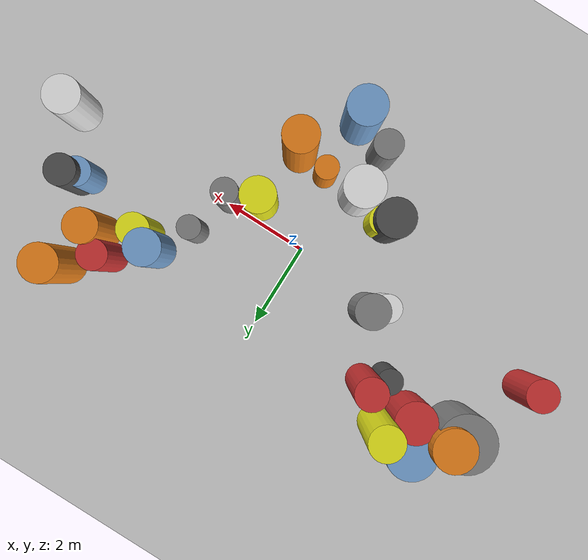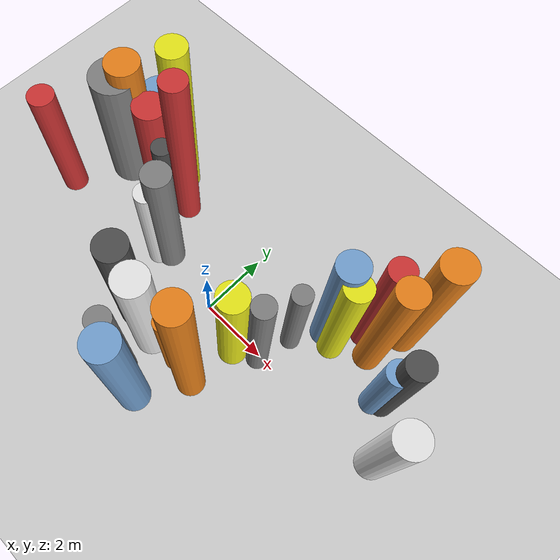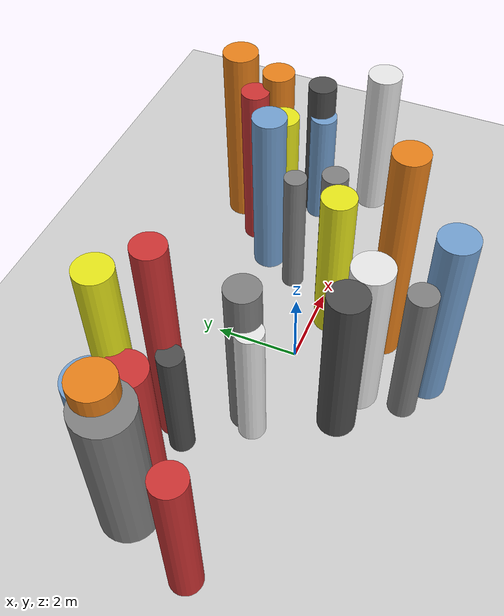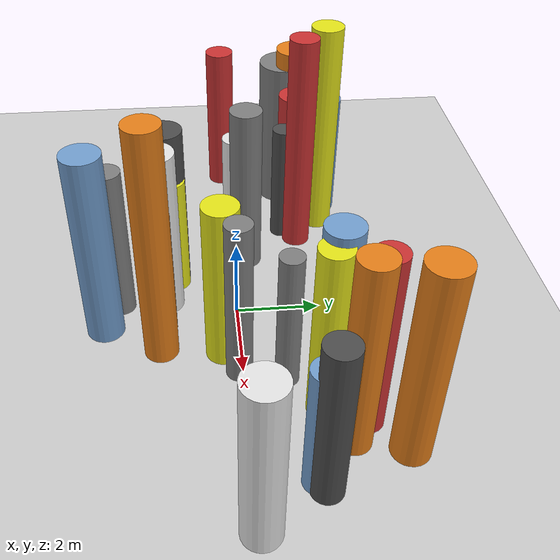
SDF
<?xml version='1.0'?>
<sdf version='1.6'>
  <world name='routeA_rl_v1__dense_recovery__rl_val__s_turn_multi_obstacle__000108'>
    <!-- Sun light -->
    <light name='sun' type='directional'>
      <cast_shadows>1</cast_shadows>
      <pose>0 0 10 0 0 0</pose>
      <diffuse>0.8 0.8 0.8 1</diffuse>
      <specular>0.2 0.2 0.2 1</specular>
      <attenuation>
        <range>1000</range>
        <constant>0.9</constant>
        <linear>0.01</linear>
        <quadratic>0.001</quadratic>
      </attenuation>
      <direction>-0.5 0.1 -0.9</direction>
    </light>

    <!-- Ground plane -->
    <model name='ground_plane'>
      <static>1</static>
      <link name='link'>
        <collision name='collision'>
          <geometry>
            <plane>
              <normal>0 0 1</normal>
              <size>100 100</size>
            </plane>
          </geometry>
          <surface>
            <contact>
              <collide_bitmask>65535</collide_bitmask>
              <ode/>
            </contact>
            <friction>
              <ode>
                <mu>100</mu>
                <mu2>50</mu2>
              </ode>
              <torsional><ode/></torsional>
            </friction>
            <bounce/>
          </surface>
          <max_contacts>10</max_contacts>
        </collision>
        <visual name='visual'>
          <cast_shadows>0</cast_shadows>
          <geometry>
            <plane>
              <normal>0 0 1</normal>
              <size>100 100</size>
            </plane>
          </geometry>
          <material>
            <script>
              <uri>file://media/materials/scripts/gazebo.material</uri>
              <n>Gazebo/Grey</n>
            </script>
          </material>
        </visual>
      </link>
    </model>

    <!-- Environment -->
    <magnetic_field>6e-06 2.3e-05 -4.2e-05</magnetic_field>
    <atmosphere type='adiabatic'/>
    <physics name='default_physics' default='0' type='ode'>
      <gravity>0 0 -9.8</gravity>
      <max_step_size>0.004</max_step_size>
      <real_time_factor>1</real_time_factor>
      <real_time_update_rate>250</real_time_update_rate>
    </physics>
    <scene>
      <ambient>0.4 0.4 0.4 1</ambient>
      <background>0.7 0.7 0.7 1</background>
      <shadows>1</shadows>
    </scene>
    <wind/>
    <spherical_coordinates>
      <surface_model>EARTH_WGS84</surface_model>
      <latitude_deg>0</latitude_deg>
      <longitude_deg>0</longitude_deg>
      <elevation>0</elevation>
      <heading_deg>0</heading_deg>
    </spherical_coordinates>

    <!-- ============ OBSTACLES (28) ============ -->
    <model name='s_turn_obs_0'>
      <static>1</static>
      <link name='link'>
        <visual name='visual'>
          <geometry>
            <cylinder>
              <radius>0.3680</radius>
              <length>4.0825</length>
            </cylinder>
          </geometry>
          <material>
            <script>
              <n>Gazebo/Red</n>
              <uri>file://media/materials/scripts/gazebo.material</uri>
            </script>
            <ambient>0.8 0.2 0.2 1</ambient>
          </material>
        </visual>
        <collision name='collision'>
          <geometry>
            <cylinder>
              <radius>0.3680</radius>
              <length>4.0825</length>
            </cylinder>
          </geometry>
          <max_contacts>10</max_contacts>
          <surface>
            <contact><ode/></contact>
            <bounce/>
            <friction>
              <ode><mu>1</mu><mu2>1</mu2></ode>
              <torsional><ode/></torsional>
            </friction>
          </surface>
        </collision>
      </link>
      <pose>-6.0000 -0.0348 2.0413 0 0 0.0000</pose>
    </model>

    <model name='s_turn_obs_1'>
      <static>1</static>
      <link name='link'>
        <visual name='visual'>
          <geometry>
            <cylinder>
              <radius>0.6534</radius>
              <length>4.1006</length>
            </cylinder>
          </geometry>
          <material>
            <script>
              <n>Gazebo/Grey</n>
              <uri>file://media/materials/scripts/gazebo.material</uri>
            </script>
            <ambient>0.5 0.5 0.5 1</ambient>
          </material>
        </visual>
        <collision name='collision'>
          <geometry>
            <cylinder>
              <radius>0.6534</radius>
              <length>4.1006</length>
            </cylinder>
          </geometry>
          <max_contacts>10</max_contacts>
          <surface>
            <contact><ode/></contact>
            <bounce/>
            <friction>
              <ode><mu>1</mu><mu2>1</mu2></ode>
              <torsional><ode/></torsional>
            </friction>
          </surface>
        </collision>
      </link>
      <pose>-5.2000 1.6719 2.0503 0 0 0.0000</pose>
    </model>

    <model name='s_turn_obs_2'>
      <static>1</static>
      <link name='link'>
        <visual name='visual'>
          <geometry>
            <cylinder>
              <radius>0.5814</radius>
              <length>3.4060</length>
            </cylinder>
          </geometry>
          <material>
            <script>
              <n>Gazebo/Blue</n>
              <uri>file://media/materials/scripts/gazebo.material</uri>
            </script>
            <ambient>0.447 0.624 0.812 1</ambient>
          </material>
        </visual>
        <collision name='collision'>
          <geometry>
            <cylinder>
              <radius>0.5814</radius>
              <length>3.4060</length>
            </cylinder>
          </geometry>
          <max_contacts>10</max_contacts>
          <surface>
            <contact><ode/></contact>
            <bounce/>
            <friction>
              <ode><mu>1</mu><mu2>1</mu2></ode>
              <torsional><ode/></torsional>
            </friction>
          </surface>
        </collision>
      </link>
      <pose>-4.4000 2.5244 1.7030 0 0 0.0000</pose>
    </model>

    <model name='s_turn_obs_3'>
      <static>1</static>
      <link name='link'>
        <visual name='visual'>
          <geometry>
            <cylinder>
              <radius>0.3984</radius>
              <length>5.7251</length>
            </cylinder>
          </geometry>
          <material>
            <script>
              <n>Gazebo/Yellow</n>
              <uri>file://media/materials/scripts/gazebo.material</uri>
            </script>
            <ambient>0.9 0.9 0.1 1</ambient>
          </material>
        </visual>
        <collision name='collision'>
          <geometry>
            <cylinder>
              <radius>0.3984</radius>
              <length>5.7251</length>
            </cylinder>
          </geometry>
          <max_contacts>10</max_contacts>
          <surface>
            <contact><ode/></contact>
            <bounce/>
            <friction>
              <ode><mu>1</mu><mu2>1</mu2></ode>
              <torsional><ode/></torsional>
            </friction>
          </surface>
        </collision>
      </link>
      <pose>-3.6000 2.4921 2.8625 0 0 0.0000</pose>
    </model>

    <model name='s_turn_obs_4'>
      <static>1</static>
      <link name='link'>
        <visual name='visual'>
          <geometry>
            <cylinder>
              <radius>0.3606</radius>
              <length>5.7950</length>
            </cylinder>
          </geometry>
          <material>
            <script>
              <n>Gazebo/Red</n>
              <uri>file://media/materials/scripts/gazebo.material</uri>
            </script>
            <ambient>0.8 0.2 0.2 1</ambient>
          </material>
        </visual>
        <collision name='collision'>
          <geometry>
            <cylinder>
              <radius>0.3606</radius>
              <length>5.7950</length>
            </cylinder>
          </geometry>
          <max_contacts>10</max_contacts>
          <surface>
            <contact><ode/></contact>
            <bounce/>
            <friction>
              <ode><mu>1</mu><mu2>1</mu2></ode>
              <torsional><ode/></torsional>
            </friction>
          </surface>
        </collision>
      </link>
      <pose>-2.8000 1.8146 2.8975 0 0 0.0000</pose>
    </model>

    <model name='s_turn_obs_5'>
      <static>1</static>
      <link name='link'>
        <visual name='visual'>
          <geometry>
            <cylinder>
              <radius>0.3925</radius>
              <length>4.4250</length>
            </cylinder>
          </geometry>
          <material>
            <script>
              <n>Gazebo/Grey</n>
              <uri>file://media/materials/scripts/gazebo.material</uri>
            </script>
            <ambient>0.5 0.5 0.5 1</ambient>
          </material>
        </visual>
        <collision name='collision'>
          <geometry>
            <cylinder>
              <radius>0.3925</radius>
              <length>4.4250</length>
            </cylinder>
          </geometry>
          <max_contacts>10</max_contacts>
          <surface>
            <contact><ode/></contact>
            <bounce/>
            <friction>
              <ode><mu>1</mu><mu2>1</mu2></ode>
              <torsional><ode/></torsional>
            </friction>
          </surface>
        </collision>
      </link>
      <pose>-2.0000 0.3825 2.2125 0 0 0.0000</pose>
    </model>

    <model name='s_turn_obs_6'>
      <static>1</static>
      <link name='link'>
        <visual name='visual'>
          <geometry>
            <cylinder>
              <radius>0.3345</radius>
              <length>3.1066</length>
            </cylinder>
          </geometry>
          <material>
            <script>
              <n>Gazebo/Yellow</n>
              <uri>file://media/materials/scripts/gazebo.material</uri>
            </script>
            <ambient>0.9 0.9 0.1 1</ambient>
          </material>
        </visual>
        <collision name='collision'>
          <geometry>
            <cylinder>
              <radius>0.3345</radius>
              <length>3.1066</length>
            </cylinder>
          </geometry>
          <max_contacts>10</max_contacts>
          <surface>
            <contact><ode/></contact>
            <bounce/>
            <friction>
              <ode><mu>1</mu><mu2>1</mu2></ode>
              <torsional><ode/></torsional>
            </friction>
          </surface>
        </collision>
      </link>
      <pose>-1.2000 -1.4455 1.5533 0 0 0.0000</pose>
    </model>

    <model name='s_turn_obs_7'>
      <static>1</static>
      <link name='link'>
        <visual name='visual'>
          <geometry>
            <cylinder>
              <radius>0.3314</radius>
              <length>3.9363</length>
            </cylinder>
          </geometry>
          <material>
            <script>
              <n>Gazebo/Grey</n>
              <uri>file://media/materials/scripts/gazebo.material</uri>
            </script>
            <ambient>0.5 0.5 0.5 1</ambient>
          </material>
        </visual>
        <collision name='collision'>
          <geometry>
            <cylinder>
              <radius>0.3314</radius>
              <length>3.9363</length>
            </cylinder>
          </geometry>
          <max_contacts>10</max_contacts>
          <surface>
            <contact><ode/></contact>
            <bounce/>
            <friction>
              <ode><mu>1</mu><mu2>1</mu2></ode>
              <torsional><ode/></torsional>
            </friction>
          </surface>
        </collision>
      </link>
      <pose>-0.4000 -2.8086 1.9682 0 0 0.0000</pose>
    </model>

    <model name='s_turn_obs_8'>
      <static>1</static>
      <link name='link'>
        <visual name='visual'>
          <geometry>
            <cylinder>
              <radius>0.4458</radius>
              <length>4.8903</length>
            </cylinder>
          </geometry>
          <material>
            <script>
              <n>Gazebo/Blue</n>
              <uri>file://media/materials/scripts/gazebo.material</uri>
            </script>
            <ambient>0.447 0.624 0.812 1</ambient>
          </material>
        </visual>
        <collision name='collision'>
          <geometry>
            <cylinder>
              <radius>0.4458</radius>
              <length>4.8903</length>
            </cylinder>
          </geometry>
          <max_contacts>10</max_contacts>
          <surface>
            <contact><ode/></contact>
            <bounce/>
            <friction>
              <ode><mu>1</mu><mu2>1</mu2></ode>
              <torsional><ode/></torsional>
            </friction>
          </surface>
        </collision>
      </link>
      <pose>0.4000 -3.1613 2.4451 0 0 0.0000</pose>
    </model>

    <model name='s_turn_obs_9'>
      <static>1</static>
      <link name='link'>
        <visual name='visual'>
          <geometry>
            <cylinder>
              <radius>0.3992</radius>
              <length>5.9717</length>
            </cylinder>
          </geometry>
          <material>
            <script>
              <n>Gazebo/Orange</n>
              <uri>file://media/materials/scripts/gazebo.material</uri>
            </script>
            <ambient>0.9 0.5 0.1 1</ambient>
          </material>
        </visual>
        <collision name='collision'>
          <geometry>
            <cylinder>
              <radius>0.3992</radius>
              <length>5.9717</length>
            </cylinder>
          </geometry>
          <max_contacts>10</max_contacts>
          <surface>
            <contact><ode/></contact>
            <bounce/>
            <friction>
              <ode><mu>1</mu><mu2>1</mu2></ode>
              <torsional><ode/></torsional>
            </friction>
          </surface>
        </collision>
      </link>
      <pose>1.2000 -1.8328 2.9858 0 0 0.0000</pose>
    </model>

    <model name='s_turn_obs_10'>
      <static>1</static>
      <link name='link'>
        <visual name='visual'>
          <geometry>
            <cylinder>
              <radius>0.3034</radius>
              <length>4.1635</length>
            </cylinder>
          </geometry>
          <material>
            <script>
              <n>Gazebo/Grey</n>
              <uri>file://media/materials/scripts/gazebo.material</uri>
            </script>
            <ambient>0.5 0.5 0.5 1</ambient>
          </material>
        </visual>
        <collision name='collision'>
          <geometry>
            <cylinder>
              <radius>0.3034</radius>
              <length>4.1635</length>
            </cylinder>
          </geometry>
          <max_contacts>10</max_contacts>
          <surface>
            <contact><ode/></contact>
            <bounce/>
            <friction>
              <ode><mu>1</mu><mu2>1</mu2></ode>
              <torsional><ode/></torsional>
            </friction>
          </surface>
        </collision>
      </link>
      <pose>2.0000 -0.0860 2.0818 0 0 0.0000</pose>
    </model>

    <model name='s_turn_obs_11'>
      <static>1</static>
      <link name='link'>
        <visual name='visual'>
          <geometry>
            <cylinder>
              <radius>0.4133</radius>
              <length>4.5961</length>
            </cylinder>
          </geometry>
          <material>
            <script>
              <n>Gazebo/Blue</n>
              <uri>file://media/materials/scripts/gazebo.material</uri>
            </script>
            <ambient>0.447 0.624 0.812 1</ambient>
          </material>
        </visual>
        <collision name='collision'>
          <geometry>
            <cylinder>
              <radius>0.4133</radius>
              <length>4.5961</length>
            </cylinder>
          </geometry>
          <max_contacts>10</max_contacts>
          <surface>
            <contact><ode/></contact>
            <bounce/>
            <friction>
              <ode><mu>1</mu><mu2>1</mu2></ode>
              <torsional><ode/></torsional>
            </friction>
          </surface>
        </collision>
      </link>
      <pose>2.8000 1.8205 2.2981 0 0 0.0000</pose>
    </model>

    <model name='s_turn_obs_12'>
      <static>1</static>
      <link name='link'>
        <visual name='visual'>
          <geometry>
            <cylinder>
              <radius>0.3417</radius>
              <length>4.5779</length>
            </cylinder>
          </geometry>
          <material>
            <script>
              <n>Gazebo/Red</n>
              <uri>file://media/materials/scripts/gazebo.material</uri>
            </script>
            <ambient>0.8 0.2 0.2 1</ambient>
          </material>
        </visual>
        <collision name='collision'>
          <geometry>
            <cylinder>
              <radius>0.3417</radius>
              <length>4.5779</length>
            </cylinder>
          </geometry>
          <max_contacts>10</max_contacts>
          <surface>
            <contact><ode/></contact>
            <bounce/>
            <friction>
              <ode><mu>1</mu><mu2>1</mu2></ode>
              <torsional><ode/></torsional>
            </friction>
          </surface>
        </collision>
      </link>
      <pose>3.6000 2.5122 2.2890 0 0 0.0000</pose>
    </model>

    <model name='s_turn_obs_13'>
      <static>1</static>
      <link name='link'>
        <visual name='visual'>
          <geometry>
            <cylinder>
              <radius>0.4348</radius>
              <length>4.9682</length>
            </cylinder>
          </geometry>
          <material>
            <script>
              <n>Gazebo/Orange</n>
              <uri>file://media/materials/scripts/gazebo.material</uri>
            </script>
            <ambient>0.9 0.5 0.1 1</ambient>
          </material>
        </visual>
        <collision name='collision'>
          <geometry>
            <cylinder>
              <radius>0.4348</radius>
              <length>4.9682</length>
            </cylinder>
          </geometry>
          <max_contacts>10</max_contacts>
          <surface>
            <contact><ode/></contact>
            <bounce/>
            <friction>
              <ode><mu>1</mu><mu2>1</mu2></ode>
              <torsional><ode/></torsional>
            </friction>
          </surface>
        </collision>
      </link>
      <pose>4.4000 3.2289 2.4841 0 0 0.0000</pose>
    </model>

    <model name='s_turn_obs_14'>
      <static>1</static>
      <link name='link'>
        <visual name='visual'>
          <geometry>
            <cylinder>
              <radius>0.3559</radius>
              <length>3.9959</length>
            </cylinder>
          </geometry>
          <material>
            <script>
              <n>Gazebo/DarkGrey</n>
              <uri>file://media/materials/scripts/gazebo.material</uri>
            </script>
            <ambient>0.3 0.3 0.3 1</ambient>
          </material>
        </visual>
        <collision name='collision'>
          <geometry>
            <cylinder>
              <radius>0.3559</radius>
              <length>3.9959</length>
            </cylinder>
          </geometry>
          <max_contacts>10</max_contacts>
          <surface>
            <contact><ode/></contact>
            <bounce/>
            <friction>
              <ode><mu>1</mu><mu2>1</mu2></ode>
              <torsional><ode/></torsional>
            </friction>
          </surface>
        </collision>
      </link>
      <pose>5.2000 1.3829 1.9979 0 0 0.0000</pose>
    </model>

    <model name='s_turn_obs_15'>
      <static>1</static>
      <link name='link'>
        <visual name='visual'>
          <geometry>
            <cylinder>
              <radius>0.4277</radius>
              <length>4.1556</length>
            </cylinder>
          </geometry>
          <material>
            <script>
              <n>Gazebo/White</n>
              <uri>file://media/materials/scripts/gazebo.material</uri>
            </script>
            <ambient>0.9 0.9 0.9 1</ambient>
          </material>
        </visual>
        <collision name='collision'>
          <geometry>
            <cylinder>
              <radius>0.4277</radius>
              <length>4.1556</length>
            </cylinder>
          </geometry>
          <max_contacts>10</max_contacts>
          <surface>
            <contact><ode/></contact>
            <bounce/>
            <friction>
              <ode><mu>1</mu><mu2>1</mu2></ode>
              <torsional><ode/></torsional>
            </friction>
          </surface>
        </collision>
      </link>
      <pose>6.0000 0.0240 2.0778 0 0 0.0000</pose>
    </model>

    <model name='s_turn_obs2_0'>
      <static>1</static>
      <link name='link'>
        <visual name='visual'>
          <geometry>
            <cylinder>
              <radius>0.4900</radius>
              <length>4.5507</length>
            </cylinder>
          </geometry>
          <material>
            <script>
              <n>Gazebo/Orange</n>
              <uri>file://media/materials/scripts/gazebo.material</uri>
            </script>
            <ambient>0.9 0.5 0.1 1</ambient>
          </material>
        </visual>
        <collision name='collision'>
          <geometry>
            <cylinder>
              <radius>0.4900</radius>
              <length>4.5507</length>
            </cylinder>
          </geometry>
          <max_contacts>10</max_contacts>
          <surface>
            <contact><ode/></contact>
            <bounce/>
            <friction>
              <ode><mu>1</mu><mu2>1</mu2></ode>
              <torsional><ode/></torsional>
            </friction>
          </surface>
        </collision>
      </link>
      <pose>-5.0000 1.9210 2.2753 0 0 0.0000</pose>
    </model>

    <model name='s_turn_obs2_1'>
      <static>1</static>
      <link name='link'>
        <visual name='visual'>
          <geometry>
            <cylinder>
              <radius>0.4787</radius>
              <length>3.6812</length>
            </cylinder>
          </geometry>
          <material>
            <script>
              <n>Gazebo/Red</n>
              <uri>file://media/materials/scripts/gazebo.material</uri>
            </script>
            <ambient>0.8 0.2 0.2 1</ambient>
          </material>
        </visual>
        <collision name='collision'>
          <geometry>
            <cylinder>
              <radius>0.4787</radius>
              <length>3.6812</length>
            </cylinder>
          </geometry>
          <max_contacts>10</max_contacts>
          <surface>
            <contact><ode/></contact>
            <bounce/>
            <friction>
              <ode><mu>1</mu><mu2>1</mu2></ode>
              <torsional><ode/></torsional>
            </friction>
          </surface>
        </collision>
      </link>
      <pose>-4.0909 1.8913 1.8406 0 0 0.0000</pose>
    </model>

    <model name='s_turn_obs2_2'>
      <static>1</static>
      <link name='link'>
        <visual name='visual'>
          <geometry>
            <cylinder>
              <radius>0.2915</radius>
              <length>3.2057</length>
            </cylinder>
          </geometry>
          <material>
            <script>
              <n>Gazebo/DarkGrey</n>
              <uri>file://media/materials/scripts/gazebo.material</uri>
            </script>
            <ambient>0.3 0.3 0.3 1</ambient>
          </material>
        </visual>
        <collision name='collision'>
          <geometry>
            <cylinder>
              <radius>0.2915</radius>
              <length>3.2057</length>
            </cylinder>
          </geometry>
          <max_contacts>10</max_contacts>
          <surface>
            <contact><ode/></contact>
            <bounce/>
            <friction>
              <ode><mu>1</mu><mu2>1</mu2></ode>
              <torsional><ode/></torsional>
            </friction>
          </surface>
        </collision>
      </link>
      <pose>-3.1818 1.4510 1.6028 0 0 0.0000</pose>
    </model>

    <model name='s_turn_obs2_3'>
      <static>1</static>
      <link name='link'>
        <visual name='visual'>
          <geometry>
            <cylinder>
              <radius>0.3185</radius>
              <length>3.5353</length>
            </cylinder>
          </geometry>
          <material>
            <script>
              <n>Gazebo/White</n>
              <uri>file://media/materials/scripts/gazebo.material</uri>
            </script>
            <ambient>0.9 0.9 0.9 1</ambient>
          </material>
        </visual>
        <collision name='collision'>
          <geometry>
            <cylinder>
              <radius>0.3185</radius>
              <length>3.5353</length>
            </cylinder>
          </geometry>
          <max_contacts>10</max_contacts>
          <surface>
            <contact><ode/></contact>
            <bounce/>
            <friction>
              <ode><mu>1</mu><mu2>1</mu2></ode>
              <torsional><ode/></torsional>
            </friction>
          </surface>
        </collision>
      </link>
      <pose>-2.2727 0.1431 1.7676 0 0 0.0000</pose>
    </model>

    <model name='s_turn_obs2_4'>
      <static>1</static>
      <link name='link'>
        <visual name='visual'>
          <geometry>
            <cylinder>
              <radius>0.4422</radius>
              <length>4.3595</length>
            </cylinder>
          </geometry>
          <material>
            <script>
              <n>Gazebo/DarkGrey</n>
              <uri>file://media/materials/scripts/gazebo.material</uri>
            </script>
            <ambient>0.3 0.3 0.3 1</ambient>
          </material>
        </visual>
        <collision name='collision'>
          <geometry>
            <cylinder>
              <radius>0.4422</radius>
              <length>4.3595</length>
            </cylinder>
          </geometry>
          <max_contacts>10</max_contacts>
          <surface>
            <contact><ode/></contact>
            <bounce/>
            <friction>
              <ode><mu>1</mu><mu2>1</mu2></ode>
              <torsional><ode/></torsional>
            </friction>
          </surface>
        </collision>
      </link>
      <pose>-1.3636 -1.5468 2.1798 0 0 0.0000</pose>
    </model>

    <model name='s_turn_obs2_5'>
      <static>1</static>
      <link name='link'>
        <visual name='visual'>
          <geometry>
            <cylinder>
              <radius>0.4691</radius>
              <length>4.3333</length>
            </cylinder>
          </geometry>
          <material>
            <script>
              <n>Gazebo/White</n>
              <uri>file://media/materials/scripts/gazebo.material</uri>
            </script>
            <ambient>0.9 0.9 0.9 1</ambient>
          </material>
        </visual>
        <collision name='collision'>
          <geometry>
            <cylinder>
              <radius>0.4691</radius>
              <length>4.3333</length>
            </cylinder>
          </geometry>
          <max_contacts>10</max_contacts>
          <surface>
            <contact><ode/></contact>
            <bounce/>
            <friction>
              <ode><mu>1</mu><mu2>1</mu2></ode>
              <torsional><ode/></torsional>
            </friction>
          </surface>
        </collision>
      </link>
      <pose>-0.4545 -1.7531 2.1667 0 0 0.0000</pose>
    </model>

    <model name='s_turn_obs2_6'>
      <static>1</static>
      <link name='link'>
        <visual name='visual'>
          <geometry>
            <cylinder>
              <radius>0.2746</radius>
              <length>3.3187</length>
            </cylinder>
          </geometry>
          <material>
            <script>
              <n>Gazebo/Orange</n>
              <uri>file://media/materials/scripts/gazebo.material</uri>
            </script>
            <ambient>0.9 0.5 0.1 1</ambient>
          </material>
        </visual>
        <collision name='collision'>
          <geometry>
            <cylinder>
              <radius>0.2746</radius>
              <length>3.3187</length>
            </cylinder>
          </geometry>
          <max_contacts>10</max_contacts>
          <surface>
            <contact><ode/></contact>
            <bounce/>
            <friction>
              <ode><mu>1</mu><mu2>1</mu2></ode>
              <torsional><ode/></torsional>
            </friction>
          </surface>
        </collision>
      </link>
      <pose>0.4545 -1.7325 1.6593 0 0 0.0000</pose>
    </model>

    <model name='s_turn_obs2_7'>
      <static>1</static>
      <link name='link'>
        <visual name='visual'>
          <geometry>
            <cylinder>
              <radius>0.4073</radius>
              <length>4.1565</length>
            </cylinder>
          </geometry>
          <material>
            <script>
              <n>Gazebo/Yellow</n>
              <uri>file://media/materials/scripts/gazebo.material</uri>
            </script>
            <ambient>0.9 0.9 0.1 1</ambient>
          </material>
        </visual>
        <collision name='collision'>
          <geometry>
            <cylinder>
              <radius>0.4073</radius>
              <length>4.1565</length>
            </cylinder>
          </geometry>
          <max_contacts>10</max_contacts>
          <surface>
            <contact><ode/></contact>
            <bounce/>
            <friction>
              <ode><mu>1</mu><mu2>1</mu2></ode>
              <torsional><ode/></torsional>
            </friction>
          </surface>
        </collision>
      </link>
      <pose>1.3636 -0.4067 2.0783 0 0 0.0000</pose>
    </model>

    <model name='s_turn_obs2_8'>
      <static>1</static>
      <link name='link'>
        <visual name='visual'>
          <geometry>
            <cylinder>
              <radius>0.2736</radius>
              <length>3.5044</length>
            </cylinder>
          </geometry>
          <material>
            <script>
              <n>Gazebo/Grey</n>
              <uri>file://media/materials/scripts/gazebo.material</uri>
            </script>
            <ambient>0.5 0.5 0.5 1</ambient>
          </material>
        </visual>
        <collision name='collision'>
          <geometry>
            <cylinder>
              <radius>0.2736</radius>
              <length>3.5044</length>
            </cylinder>
          </geometry>
          <max_contacts>10</max_contacts>
          <surface>
            <contact><ode/></contact>
            <bounce/>
            <friction>
              <ode><mu>1</mu><mu2>1</mu2></ode>
              <torsional><ode/></torsional>
            </friction>
          </surface>
        </collision>
      </link>
      <pose>2.2727 0.9533 1.7522 0 0 0.0000</pose>
    </model>

    <model name='s_turn_obs2_9'>
      <static>1</static>
      <link name='link'>
        <visual name='visual'>
          <geometry>
            <cylinder>
              <radius>0.3630</radius>
              <length>4.3976</length>
            </cylinder>
          </geometry>
          <material>
            <script>
              <n>Gazebo/Yellow</n>
              <uri>file://media/materials/scripts/gazebo.material</uri>
            </script>
            <ambient>0.9 0.9 0.1 1</ambient>
          </material>
        </visual>
        <collision name='collision'>
          <geometry>
            <cylinder>
              <radius>0.3630</radius>
              <length>4.3976</length>
            </cylinder>
          </geometry>
          <max_contacts>10</max_contacts>
          <surface>
            <contact><ode/></contact>
            <bounce/>
            <friction>
              <ode><mu>1</mu><mu2>1</mu2></ode>
              <torsional><ode/></torsional>
            </friction>
          </surface>
        </collision>
      </link>
      <pose>3.1818 1.6132 2.1988 0 0 0.0000</pose>
    </model>

    <model name='s_turn_obs2_10'>
      <static>1</static>
      <link name='link'>
        <visual name='visual'>
          <geometry>
            <cylinder>
              <radius>0.3855</radius>
              <length>4.8890</length>
            </cylinder>
          </geometry>
          <material>
            <script>
              <n>Gazebo/Orange</n>
              <uri>file://media/materials/scripts/gazebo.material</uri>
            </script>
            <ambient>0.9 0.5 0.1 1</ambient>
          </material>
        </visual>
        <collision name='collision'>
          <geometry>
            <cylinder>
              <radius>0.3855</radius>
              <length>4.8890</length>
            </cylinder>
          </geometry>
          <max_contacts>10</max_contacts>
          <surface>
            <contact><ode/></contact>
            <bounce/>
            <friction>
              <ode><mu>1</mu><mu2>1</mu2></ode>
              <torsional><ode/></torsional>
            </friction>
          </surface>
        </collision>
      </link>
      <pose>4.0909 2.1191 2.4445 0 0 0.0000</pose>
    </model>

    <model name='s_turn_obs2_11'>
      <static>1</static>
      <link name='link'>
        <visual name='visual'>
          <geometry>
            <cylinder>
              <radius>0.3341</radius>
              <length>3.2153</length>
            </cylinder>
          </geometry>
          <material>
            <script>
              <n>Gazebo/Blue</n>
              <uri>file://media/materials/scripts/gazebo.material</uri>
            </script>
            <ambient>0.447 0.624 0.812 1</ambient>
          </material>
        </visual>
        <collision name='collision'>
          <geometry>
            <cylinder>
              <radius>0.3341</radius>
              <length>3.2153</length>
            </cylinder>
          </geometry>
          <max_contacts>10</max_contacts>
          <surface>
            <contact><ode/></contact>
            <bounce/>
            <friction>
              <ode><mu>1</mu><mu2>1</mu2></ode>
              <torsional><ode/></torsional>
            </friction>
          </surface>
        </collision>
      </link>
      <pose>5.0000 1.2385 1.6077 0 0 0.0000</pose>
    </model>

    <!-- GUI camera -->
    <gui fullscreen='0'>
      <camera name='user_camera'>
        <pose>-15 0 18 0 0.85 0.15</pose>
        <view_controller>orbit</view_controller>
        <projection_type>perspective</projection_type>
      </camera>
    </gui>
  </world>
</sdf>
